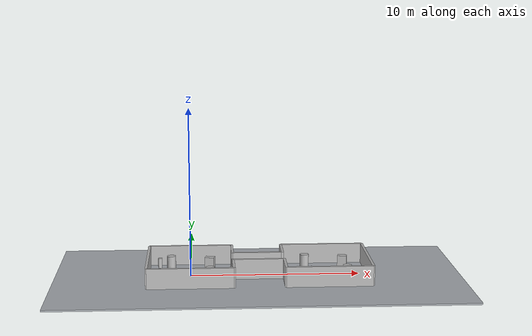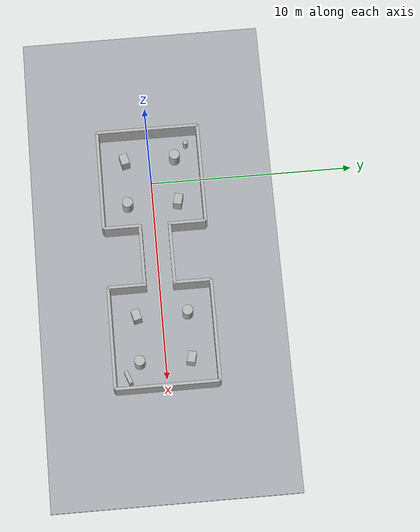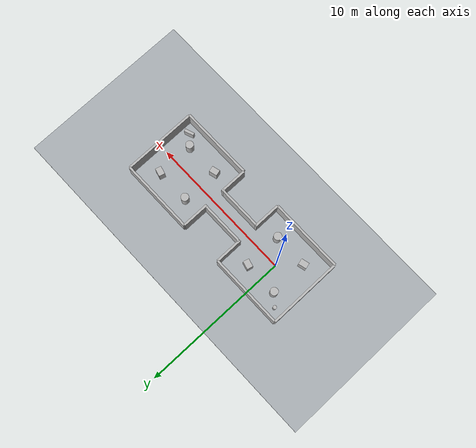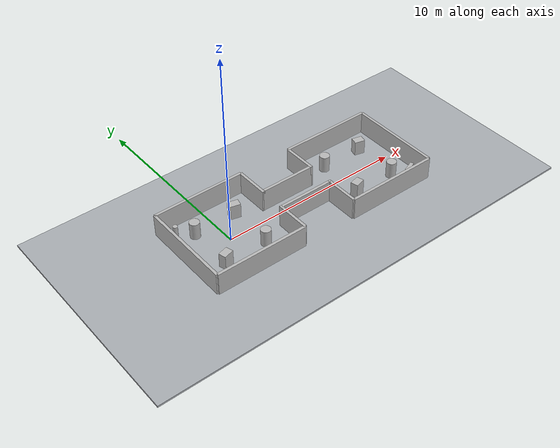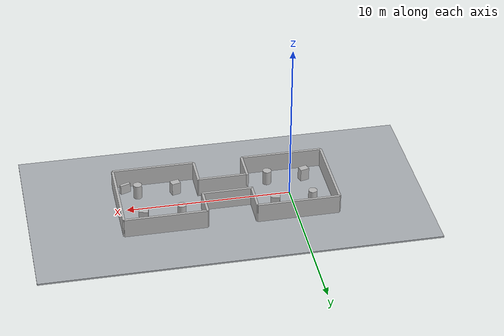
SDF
<?xml version="1.0"?>
<sdf version="1.10">
  <world name="slam_world">
    <physics name="default_physics" type="ode">
      <max_step_size>0.004</max_step_size>
      <real_time_factor>1.0</real_time_factor>
      <real_time_update_rate>250</real_time_update_rate>
    </physics>

    <plugin filename="gz-sim-physics-system" name="gz::sim::systems::Physics"/>
    <plugin filename="gz-sim-user-commands-system" name="gz::sim::systems::UserCommands"/>
    <plugin filename="gz-sim-scene-broadcaster-system" name="gz::sim::systems::SceneBroadcaster"/>
    <plugin filename="gz-sim-imu-system" name="gz::sim::systems::Imu"/>
    <plugin filename="gz-sim-sensors-system" name="gz::sim::systems::Sensors">
      <render_engine>ogre2</render_engine>
    </plugin>

    <gravity>0 0 -9.81</gravity>

    <scene>
      <ambient>0.45 0.45 0.45 1</ambient>
      <background>0.75 0.80 0.85 1</background>
      <shadows>false</shadows>
      <grid>true</grid>
    </scene>

    <light name="sun" type="directional">
      <cast_shadows>false</cast_shadows>
      <pose>8 0 12 0 0 0</pose>
      <diffuse>0.9 0.9 0.9 1</diffuse>
      <specular>0.2 0.2 0.2 1</specular>
      <attenuation>
        <range>1000</range>
        <constant>0.9</constant>
        <linear>0.01</linear>
        <quadratic>0.001</quadratic>
      </attenuation>
      <direction>-0.4 0.2 -1.0</direction>
    </light>

    <model name="ground_plane">
      <static>true</static>
      <link name="ground_link">
        <collision name="ground_collision">
          <geometry><box><size>24 12 0.10</size></box></geometry>
          <pose>4 0 -0.05 0 0 0</pose>
        </collision>
        <visual name="ground_visual">
          <geometry><box><size>24 12 0.10</size></box></geometry>
          <pose>4 0 -0.05 0 0 0</pose>
          <material>
            <ambient>0.66 0.68 0.70 1</ambient>
            <diffuse>0.66 0.68 0.70 1</diffuse>
          </material>
        </visual>
      </link>
    </model>

    <model name="repeated_rooms">
      <static>true</static>
      <link name="structure_link">
        <!-- Room A shell, centred at x=0. -->
        <collision name="a_north_collision"><pose>0 2.5 0.6 0 0 0</pose><geometry><box><size>5.0 0.15 1.2</size></box></geometry></collision>
        <visual name="a_north_visual"><pose>0 2.5 0.6 0 0 0</pose><geometry><box><size>5.0 0.15 1.2</size></box></geometry></visual>
        <collision name="a_south_collision"><pose>0 -2.5 0.6 0 0 0</pose><geometry><box><size>5.0 0.15 1.2</size></box></geometry></collision>
        <visual name="a_south_visual"><pose>0 -2.5 0.6 0 0 0</pose><geometry><box><size>5.0 0.15 1.2</size></box></geometry></visual>
        <collision name="a_west_collision"><pose>-2.5 0 0.6 0 0 0</pose><geometry><box><size>0.15 5.0 1.2</size></box></geometry></collision>
        <visual name="a_west_visual"><pose>-2.5 0 0.6 0 0 0</pose><geometry><box><size>0.15 5.0 1.2</size></box></geometry></visual>
        <collision name="a_east_north_collision"><pose>2.5 1.575 0.6 0 0 0</pose><geometry><box><size>0.15 1.85 1.2</size></box></geometry></collision>
        <visual name="a_east_north_visual"><pose>2.5 1.575 0.6 0 0 0</pose><geometry><box><size>0.15 1.85 1.2</size></box></geometry></visual>
        <collision name="a_east_south_collision"><pose>2.5 -1.575 0.6 0 0 0</pose><geometry><box><size>0.15 1.85 1.2</size></box></geometry></collision>
        <visual name="a_east_south_visual"><pose>2.5 -1.575 0.6 0 0 0</pose><geometry><box><size>0.15 1.85 1.2</size></box></geometry></visual>

        <!-- Connector, 1.3 m clear width. -->
        <collision name="connector_north_collision"><pose>4 0.725 0.6 0 0 0</pose><geometry><box><size>3.0 0.15 1.2</size></box></geometry></collision>
        <visual name="connector_north_visual"><pose>4 0.725 0.6 0 0 0</pose><geometry><box><size>3.0 0.15 1.2</size></box></geometry></visual>
        <collision name="connector_south_collision"><pose>4 -0.725 0.6 0 0 0</pose><geometry><box><size>3.0 0.15 1.2</size></box></geometry></collision>
        <visual name="connector_south_visual"><pose>4 -0.725 0.6 0 0 0</pose><geometry><box><size>3.0 0.15 1.2</size></box></geometry></visual>

        <!-- Room B shell, translated eight metres from room A. -->
        <collision name="b_north_collision"><pose>8 2.5 0.6 0 0 0</pose><geometry><box><size>5.0 0.15 1.2</size></box></geometry></collision>
        <visual name="b_north_visual"><pose>8 2.5 0.6 0 0 0</pose><geometry><box><size>5.0 0.15 1.2</size></box></geometry></visual>
        <collision name="b_south_collision"><pose>8 -2.5 0.6 0 0 0</pose><geometry><box><size>5.0 0.15 1.2</size></box></geometry></collision>
        <visual name="b_south_visual"><pose>8 -2.5 0.6 0 0 0</pose><geometry><box><size>5.0 0.15 1.2</size></box></geometry></visual>
        <collision name="b_east_collision"><pose>10.5 0 0.6 0 0 0</pose><geometry><box><size>0.15 5.0 1.2</size></box></geometry></collision>
        <visual name="b_east_visual"><pose>10.5 0 0.6 0 0 0</pose><geometry><box><size>0.15 5.0 1.2</size></box></geometry></visual>
        <collision name="b_west_north_collision"><pose>5.5 1.575 0.6 0 0 0</pose><geometry><box><size>0.15 1.85 1.2</size></box></geometry></collision>
        <visual name="b_west_north_visual"><pose>5.5 1.575 0.6 0 0 0</pose><geometry><box><size>0.15 1.85 1.2</size></box></geometry></visual>
        <collision name="b_west_south_collision"><pose>5.5 -1.575 0.6 0 0 0</pose><geometry><box><size>0.15 1.85 1.2</size></box></geometry></collision>
        <visual name="b_west_south_visual"><pose>5.5 -1.575 0.6 0 0 0</pose><geometry><box><size>0.15 1.85 1.2</size></box></geometry></visual>

        <!-- Repeated landmark set in room A. -->
        <collision name="a_cylinder_nw_collision"><pose>-1.15 1.25 0.45 0 0 0</pose><geometry><cylinder><radius>0.26</radius><length>0.9</length></cylinder></geometry></collision>
        <visual name="a_cylinder_nw_visual"><pose>-1.15 1.25 0.45 0 0 0</pose><geometry><cylinder><radius>0.26</radius><length>0.9</length></cylinder></geometry></visual>
        <collision name="a_cylinder_se_collision"><pose>1.15 -1.25 0.45 0 0 0</pose><geometry><cylinder><radius>0.26</radius><length>0.9</length></cylinder></geometry></collision>
        <visual name="a_cylinder_se_visual"><pose>1.15 -1.25 0.45 0 0 0</pose><geometry><cylinder><radius>0.26</radius><length>0.9</length></cylinder></geometry></visual>
        <collision name="a_box_sw_collision"><pose>-1.15 -1.25 0.40 0 0 0.25</pose><geometry><box><size>0.55 0.40 0.8</size></box></geometry></collision>
        <visual name="a_box_sw_visual"><pose>-1.15 -1.25 0.40 0 0 0.25</pose><geometry><box><size>0.55 0.40 0.8</size></box></geometry></visual>
        <collision name="a_box_ne_collision"><pose>1.15 1.25 0.40 0 0 -0.25</pose><geometry><box><size>0.55 0.40 0.8</size></box></geometry></collision>
        <visual name="a_box_ne_visual"><pose>1.15 1.25 0.40 0 0 -0.25</pose><geometry><box><size>0.55 0.40 0.8</size></box></geometry></visual>

        <!-- The same landmark set translated into room B. -->
        <collision name="b_cylinder_nw_collision"><pose>6.85 1.25 0.45 0 0 0</pose><geometry><cylinder><radius>0.26</radius><length>0.9</length></cylinder></geometry></collision>
        <visual name="b_cylinder_nw_visual"><pose>6.85 1.25 0.45 0 0 0</pose><geometry><cylinder><radius>0.26</radius><length>0.9</length></cylinder></geometry></visual>
        <collision name="b_cylinder_se_collision"><pose>9.15 -1.25 0.45 0 0 0</pose><geometry><cylinder><radius>0.26</radius><length>0.9</length></cylinder></geometry></collision>
        <visual name="b_cylinder_se_visual"><pose>9.15 -1.25 0.45 0 0 0</pose><geometry><cylinder><radius>0.26</radius><length>0.9</length></cylinder></geometry></visual>
        <collision name="b_box_sw_collision"><pose>6.85 -1.25 0.40 0 0 0.25</pose><geometry><box><size>0.55 0.40 0.8</size></box></geometry></collision>
        <visual name="b_box_sw_visual"><pose>6.85 -1.25 0.40 0 0 0.25</pose><geometry><box><size>0.55 0.40 0.8</size></box></geometry></visual>
        <collision name="b_box_ne_collision"><pose>9.15 1.25 0.40 0 0 -0.25</pose><geometry><box><size>0.55 0.40 0.8</size></box></geometry></collision>
        <visual name="b_box_ne_visual"><pose>9.15 1.25 0.40 0 0 -0.25</pose><geometry><box><size>0.55 0.40 0.8</size></box></geometry></visual>

        <!-- Small non-repeated features used only as weak global anchors. -->
        <collision name="a_unique_collision"><pose>-1.85 1.85 0.30 0 0 0</pose><geometry><cylinder><radius>0.12</radius><length>0.6</length></cylinder></geometry></collision>
        <visual name="a_unique_visual"><pose>-1.85 1.85 0.30 0 0 0</pose><geometry><cylinder><radius>0.12</radius><length>0.6</length></cylinder></geometry></visual>
        <collision name="b_unique_collision"><pose>9.85 -1.85 0.30 0 0 0.35</pose><geometry><box><size>0.65 0.18 0.6</size></box></geometry></collision>
        <visual name="b_unique_visual"><pose>9.85 -1.85 0.30 0 0 0.35</pose><geometry><box><size>0.65 0.18 0.6</size></box></geometry></visual>
      </link>
    </model>

    <gui fullscreen="false">
      <plugin filename="MinimalScene" name="3D View">
        <gz-gui>
          <title>3D View</title>
          <property key="showTitleBar" type="bool">false</property>
          <property key="state" type="string">docked</property>
        </gz-gui>
        <engine>ogre2</engine>
        <scene>scene</scene>
        <ambient_light>0.4 0.4 0.4</ambient_light>
        <background_color>0.75 0.80 0.85</background_color>
        <camera_pose>4 -9 9 0 0.65 1.57</camera_pose>
        <camera_clip><near>0.10</near><far>1000</far></camera_clip>
      </plugin>
      <plugin filename="GzSceneManager" name="Scene Manager"/>
      <plugin filename="WorldControl" name="World control">
        <gz-gui>
          <title>World control</title>
          <property key="showTitleBar" type="bool">false</property>
          <property key="state" type="string">docked</property>
        </gz-gui>
        <play_pause>true</play_pause>
        <step>true</step>
        <start_paused>false</start_paused>
      </plugin>
    </gui>
  </world>
</sdf>
